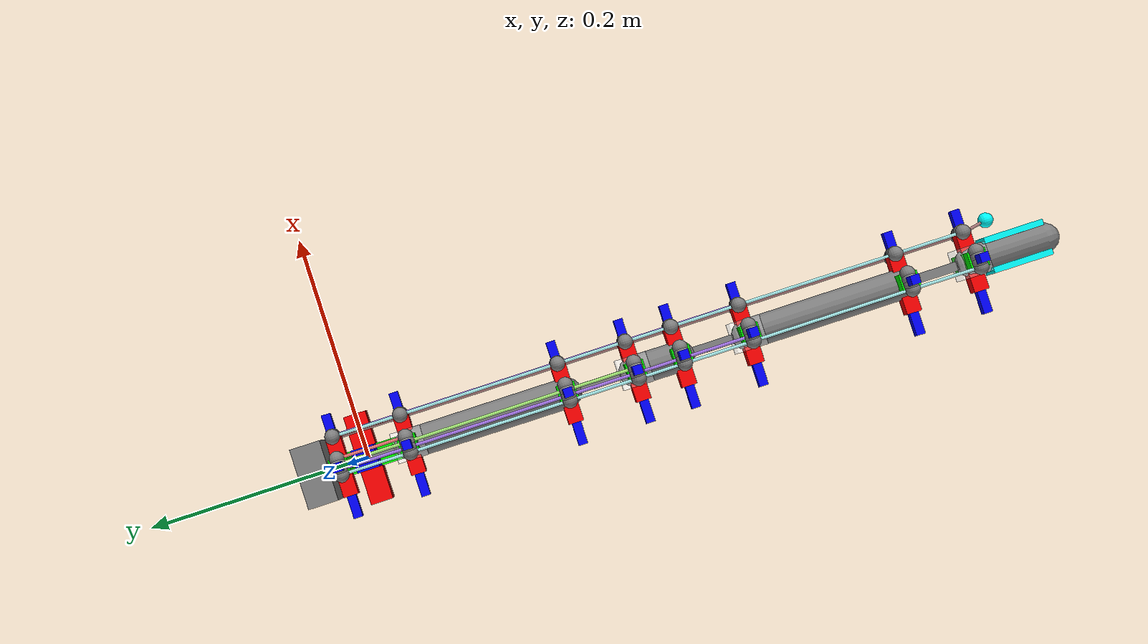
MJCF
<mujoco>

<!-- Default parameters -->
<default>
    <geom density="100"/>
</default>

<!-- gravity =0 -->
<option gravity="0 0 0"/>

<!-- Compiler and asset settings -->
<compiler angle="radian" meshdir="." autolimits="true"/>
<asset>
    <!-- STL models can be added here -->
</asset>

<worldbody>
    <!-- Lighting and environment -->
    <light directional="true" pos="-0.5 0.5 3" dir="0 0 -1" />
    <geom name="floor" pos="0 0 0" size="1 1 1" type="plane" rgba="1 0.83 0.61 0.5"/>
    <geom name="x-axis" type="box" size=".04 .01 .01" rgba="1 0 0 1" contype="0" conaffinity="0"/>
    <geom name="y-axis" type="box" size=".01 .04 .01" rgba="0 1 0 1" contype="0" conaffinity="0"/>
    <geom name="z-axis" type="box" size=".01 .01 .04" rgba="0 0 1 1" contype="0" conaffinity="0"/>

    <!-- Add a  90 degree rotation around x and place the arm 40 cm over the table-->
    <body name="base_x" pos="0 0 .4" euler="1.5708 0 0">
        <geom name="base_x" type="box" size=".02 .02 .01" rgba=".5 .5 .5 1" contype="0" conaffinity="0"/>
    <!-- BASE with base rotation joint around Z axis-->
    <body name="base_rot" pos="0 0 0">
        <joint name="base_z_joint" type="hinge" axis="0 0 1" pos="0 0 0" damping="0.01" range="-3.14 3.14"/>

        <!-- Static base platform -->
        <body name="base" pos="0 0 0">
            <geom name="base" type="box" size=".02 .02 .01" rgba=".5 .5 .5 1" contype="0" conaffinity="0"/>

            <!-- SHOULDER JOINT -->
            <body name="shoulderbase" pos="0 0 .04">
                <geom name="baseframex" type="box" size=".003" fromto="-.035 0 -.023 .035 0 -.023" rgba="0 0 1 1" contype="0" conaffinity="0"/>
                <geom name="baseframey" type="box" size=".003" fromto="0 -.035 -.023 0 .035 -.023" rgba="0 0 1 1" contype="0" conaffinity="0"/>
                <!-- Seilanker (8 Startpunkte + 1* gripper) -->
                <site name="sh_tendon_gripper"   pos="0.0186 -0.0087 -0.023" size="0.005"/>
                <site name="sh_tendon_x_start_1"   pos="0.0198 -0.0053 -0.023" size="0.005"/>
                <site name="sh_tendon_x_start_2"   pos="0.0204 -0.0018 -0.023" size="0.005"/>
                <site name="sh_tendon_x_start_3"   pos="0.0204  0.0018 -0.023" size="0.005"/>
                <site name="sh_tendon_x_start_4"   pos="0.0198  0.0053 -0.023" size="0.005"/>
                <site name="sh_tendon_y_start_1"   pos="0.0053  0.0198 -0.023" size="0.005"/>
                <site name="sh_tendon_y_start_2"   pos="0.0018  0.0204 -0.023" size="0.005"/>
                <site name="sh_tendon_y_start_3"   pos="-0.0018 0.0204 -0.023" size="0.005"/>
                <site name="sh_tendon_y_start_4"   pos="-0.0053 0.0198 -0.023" size="0.005"/>

                <body name="shoulder_xjoint1" pos="0 0 0">
                    <geom name="shoulder_xjoint1" type="box" size=".005" fromto="-.02 0 -.023 .02 0 -.023" rgba="1 0 0 1" contype="0" conaffinity="0"/>
                    <joint name="shoulder_xjoint1" type="hinge" axis="1 0 0" pos="0 0 -.023" damping="0.02" range="-0.7854 0.7854"/>

                    <body name="shoulder_yjoint1" pos="0 0 0">
                        <geom name="shoulder_connector" type="box" size=".003" fromto="0 0 -.023 0 0 .023" rgba=".5 .5 .5 1" contype="0" conaffinity="0"/>
                        <geom name="shoulder_yjoint1" type="box" size=".006" fromto="0 0.02 -.023 0 -0.02 -.023" rgba="0 1 0 1" contype="0" conaffinity="0"/>
                        <joint name="shoulder_yjoint1" type="hinge" axis="0 1 0" pos="0 0 -.023" damping="0.02" range="-0.7854 0.7854"/>

                        <geom name="shoulder_yjoint2" type="box" size=".006" fromto="0 0.02 .023 0 -0.02 .023" rgba="0 1 0 1" contype="0" conaffinity="0"/>
                        <body name="shoulder_yjoint2" pos="0 0 0">
                            <joint name="shoulder_yjoint2" type="hinge" axis="0 1 0" pos="0 0 .023" damping="0.02" range="-0.7854 0.7854"/>

                            <geom name="shoulder_xjoint2" type="box" size=".005" fromto="-.02 0 .023 .02 0 .023" rgba="1 0 0 1" contype="0" conaffinity="0"/>
                            <body name="shoulder_end" pos="0 0 .023">
                                <geom name="shoulder_box" type="box" size=".01 .01 .01" rgba="1 1 1 .3" contype="0" conaffinity="0" mass="0"/>
                                <joint name="shoulder_xjoint2" type="hinge" axis="1 0 0" pos="0 0 0" damping="0.02" range="-0.7854 0.7854"/>
                                <geom name="endframex" type="box" size=".003" fromto="-.035 0 0 .035 0 0" rgba="0 0 1 1" contype="0" conaffinity="0"/>
                                <geom name="endframey" type="box" size=".003" fromto="0 -.035 0 0 .035 0" rgba="0 0 1 1" contype="0" conaffinity="0"/>
                                <!-- Seilanker (8 Endpunkte + 1* gripper) -->
                                <site name="sh_tendon_gripper_end"     pos="0.0186 -0.0087 0.0" size="0.005"/>
                                <site name="sh_tendon_x_end_1"         pos="0.0198 -0.0053 0.0" size="0.005"/>
                                <site name="sh_tendon_x_end_2"         pos="0.0204 -0.0018 0.0" size="0.005"/>
                                <site name="sh_tendon_x_end_3"         pos="0.0204  0.0018 0.0" size="0.005"/>
                                <site name="sh_tendon_x_end_4"         pos="0.0198  0.0053 0.0" size="0.005"/>
                                <site name="sh_tendon_y_end_1"         pos="0.0053  0.0198 0.0" size="0.005"/>
                                <site name="sh_tendon_y_end_2"         pos="0.0018  0.0204 0.0" size="0.005"/>
                                <site name="sh_tendon_y_end_3"         pos="-0.0018 0.0204 0.0" size="0.005"/>
                                <site name="sh_tendon_y_end_4"         pos="-0.0053 0.0198 0.0" size="0.005"/>

                                <!-- Connector between shoulder and elbow -->
                                <geom name="link_shoulder_elbow1" type="capsule" fromto="0 0 0 0 0 0.107" size="0.01" rgba="0.5 0.5 0.5 1" contype="0" conaffinity="0"/>

                                <!-- ELBOW JOINT 1 -->
                                <body name="elbow1base" pos="0 0 0.13">
                                    <geom name="elbow1framex" type="box" size=".003" fromto="-.035 0 -.023 .035 0 -.023" rgba="0 0 1 1" contype="0" conaffinity="0"/>
                                    <geom name="elbow1framey" type="box" size=".003" fromto="0 -.035 -.023 0 .035 -.023" rgba="0 0 1 1" contype="0" conaffinity="0"/>
                                    <!-- Seilanker el1 (8 Startpunkte + 1* gripper) -->
                                    <site name="el1_tendon_gripper"     pos="0.0186 -0.0087 -0.023" size="0.005"/>
                                    <site name="el1_tendon_x_start_1"   pos="0.0198 -0.0053 -0.023" size="0.005"/>
                                    <site name="el1_tendon_x_start_2"   pos="0.0204 -0.0018 -0.023" size="0.005"/>
                                    <site name="el1_tendon_x_start_3"   pos="0.0204  0.0018 -0.023" size="0.005"/>
                                    <site name="el1_tendon_x_start_4"   pos="0.0198  0.0053 -0.023" size="0.005"/>
                                    <site name="el1_tendon_y_start_1"   pos="0.0053  0.0198 -0.023" size="0.005"/>
                                    <site name="el1_tendon_y_start_2"   pos="0.0018  0.0204 -0.023" size="0.005"/>
                                    <site name="el1_tendon_y_start_3"   pos="-0.0018 0.0204 -0.023" size="0.005"/>
                                    <site name="el1_tendon_y_start_4"   pos="-0.0053 0.0198 -0.023" size="0.005"/>

                                    <body name="elbow1_xjoint1" pos="0 0 0">
                                        <geom name="elbow1_xjoint1" type="box" size=".005" fromto="-.02 0 -.023 .02 0 -.023" rgba="1 0 0 1" contype="0" conaffinity="0"/>
                                        <joint name="elbow1_xjoint1" type="hinge" axis="1 0 0" pos="0 0 -.023" damping="0.02" range="-0.7854 0.7854" />
                                        <body name="elbow1_yjoint1" pos="0 0 0">
                                            <geom name="elbow1_connector" type="box" size=".003" fromto="0 0 -.023 0 0 .023" rgba=".5 .5 .5 1" contype="0" conaffinity="0"/>
                                            <geom name="elbow1_yjoint1" type="box" size=".006" fromto="0 0.02 -.023 0 -0.02 -.023" rgba="0 1 0 1" contype="0" conaffinity="0"/>
                                            <joint name="elbow1_yjoint1" type="hinge" axis="0 1 0" pos="0 0 -.023" damping="0.02" range="-0.7854 0.7854"/>
                                            <geom name="elbow1_yjoint2" type="box" size=".006" fromto="0 0.02 .023 0 -0.02 .023" rgba="0 1 0 1" contype="0" conaffinity="0"/>
                                            <body name="elbow1_yjoint2" pos="0 0 0">
                                                <joint name="elbow1_yjoint2" type="hinge" axis="0 1 0" pos="0 0 .023" damping="0.02" range="-0.7854 0.7854"/>
                                                <geom name="elbow1_xjoint2" type="box" size=".005" fromto="-.02 0 .023 .02 0 .023" rgba="1 0 0 1" contype="0" conaffinity="0"/>
                                                <body name="elbow1_end" pos="0 0 .023">
                                                    <geom name="elbow1_box" type="box" size=".01 .01 .01" rgba="1 1 1 .3" contype="0" conaffinity="0" mass="0"/>
                                                    <joint name="elbow1_xjoint2" type="hinge" axis="1 0 0" pos="0 0 0" damping="0.02" range="-0.7854 0.7854"/>
                                                    <geom name="elbow1framex_end" type="box" size=".003" fromto="-.035 0 0 .035 0 0" rgba="0 0 1 1" contype="0" conaffinity="0"/>
                                                    <geom name="elbow1framey_end" type="box" size=".003" fromto="0 -.035 0 0 .035 0" rgba="0 0 1 1" contype="0" conaffinity="0"/>
                                                    <!-- Seilanker el1 (8 Endpunkte + 1* gripper) -->
                                                    <site name="el1_tendon_gripper_end"     pos="0.0186 -0.0087 0.0" size="0.005"/>
                                                    <site name="el1_tendon_x_end_1"         pos="0.0198 -0.0053 0.0" size="0.005"/>
                                                    <site name="el1_tendon_x_end_2"         pos="0.0204 -0.0018 0.0" size="0.005"/>
                                                    <site name="el1_tendon_x_end_3"         pos="0.0204  0.0018 0.0" size="0.005"/>
                                                    <site name="el1_tendon_x_end_4"         pos="0.0198  0.0053 0.0" size="0.005"/>
                                                    <site name="el1_tendon_y_end_1"         pos="0.0053  0.0198 0.0" size="0.005"/>
                                                    <site name="el1_tendon_y_end_2"         pos="0.0018  0.0204 0.0" size="0.005"/>
                                                    <site name="el1_tendon_y_end_3"         pos="-0.0018 0.0204 0.0" size="0.005"/>
                                                    <site name="el1_tendon_y_end_4"         pos="-0.0053 0.0198 0.0" size="0.005"/>

                                                    <!--Connector between elbow1 and elbow2-->
                                                    <geom name="link_elbow1_elbow2" type="capsule" fromto="0 0 0 0 0 0.031" size="0.01" rgba="0.5 0.5 0.5 1" contype="0" conaffinity="0"/>
                                                    <site  name="elbow_site" pos="0 0 0.0155" size="0.01" rgba="0 1 1 1"/>
                                                    <!-- ELBOW JOINT 2 -->
                                                    <body name="elbow2base" pos="0 0 0.054">
                                                        <geom name="elbow2framex" type="box" size=".003" fromto="-.035 0 -.023 .035 0 -.023" rgba="0 0 1 1" contype="0" conaffinity="0"/>
                                                        <geom name="elbow2framey" type="box" size=".003" fromto="0 -.035 -.023 0 .035 -.023" rgba="0 0 1 1" contype="0" conaffinity="0"/>
                                                        <!-- Seilanker el2 (8 Startpunkte + 1* gripper) -->
                                                        <site name="el2_tendon_gripper"     pos="0.0186 -0.0087 -0.023" size="0.005"/>
                                                        <site name="el2_tendon_x_start_1"   pos="0.0198 -0.0053 -0.023" size="0.005"/>
                                                        <site name="el2_tendon_x_start_2"   pos="0.0204 -0.0018 -0.023" size="0.005"/>
                                                        <site name="el2_tendon_x_start_3"   pos="0.0204  0.0018 -0.023" size="0.005"/>
                                                        <site name="el2_tendon_x_start_4"   pos="0.0198  0.0053 -0.023" size="0.005"/>
                                                        <site name="el2_tendon_y_start_1"   pos="0.0053  0.0198 -0.023" size="0.005"/>
                                                        <site name="el2_tendon_y_start_2"   pos="0.0018  0.0204 -0.023" size="0.005"/>
                                                        <site name="el2_tendon_y_start_3"   pos="-0.0018 0.0204 -0.023" size="0.005"/>
                                                        <site name="el2_tendon_y_start_4"   pos="-0.0053 0.0198 -0.023" size="0.005"/>

                                                        <body name="elbow2_xjoint1" pos="0 0 0">
                                                            <geom name="elbow2_xjoint1" type="box" size=".005" fromto="-.02 0 -.023 .02 0 -.023" rgba="1 0 0 1" contype="0" conaffinity="0"/>
                                                            <joint name="elbow2_xjoint1" type="hinge" axis="1 0 0" pos="0 0 -.023" damping="0.02" range="-0.7854 0.7854"/>
                                                            <body name="elbow2_yjoint1" pos="0 0 0">
                                                                <geom name="elbow2_connector" type="box" size=".003" fromto="0 0 -.023 0 0 .023" rgba=".5 .5 .5 1" contype="0" conaffinity="0"/>
                                                                <geom name="elbow2_yjoint1" type="box" size=".006" fromto="0 0.02 -.023 0 -0.02 -.023" rgba="0 1 0 1" contype="0" conaffinity="0"/>
                                                                <joint name="elbow2_yjoint1" type="hinge" axis="0 1 0" pos="0 0 -.023" damping="0.02" range="-0.7854 0.7854"/>
                                                                <geom name="elbow2_yjoint2" type="box" size=".006" fromto="0 0.02 .023 0 -0.02 .023" rgba="0 1 0 1" contype="0" conaffinity="0"/>
                                                                <body name="elbow2_yjoint2" pos="0 0 0">
                                                                    <joint name="elbow2_yjoint2" type="hinge" axis="0 1 0" pos="0 0 .023" damping="0.02" range="-0.7854 0.7854"/>
                                                                    <geom name="elbow2_xjoint2" type="box" size=".005" fromto="-.02 0 .023 .02 0 .023" rgba="1 0 0 1" contype="0" conaffinity="0"/>
                                                                    <body name="elbow2_end" pos="0 0 .023">
                                                                        <geom name="elbow2_box" type="box" size=".01 .01 .01" rgba="1 1 1 .3" contype="0" conaffinity="0" mass="0"/>
                                                                        <joint name="elbow2_xjoint2" type="hinge" axis="1 0 0" pos="0 0 0" damping="0.02" range="-0.7854 0.7854"/>
                                                                        <geom name="elbow2framex_end" type="box" size=".003" fromto="-.035 0 0 .035 0 0" rgba="0 0 1 1" contype="0" conaffinity="0"/>
                                                                        <geom name="elbow2framey_end" type="box" size=".003" fromto="0 -.035 0 0 .035 0" rgba="0 0 1 1" contype="0" conaffinity="0"/>
                                                                        <!-- Seilanker el2 (8 Endpunkte + 1* gripper) -->
                                                                        <site name="el2_tendon_gripper_end"     pos="0.0186 -0.0087 0.0" size="0.005"/>
                                                                        <site name="el2_tendon_x_end_1"         pos="0.0198 -0.0053 0.0" size="0.005"/>
                                                                        <site name="el2_tendon_x_end_2"         pos="0.0204 -0.0018 0.0" size="0.005"/>
                                                                        <site name="el2_tendon_x_end_3"         pos="0.0204  0.0018 0.0" size="0.005"/>
                                                                        <site name="el2_tendon_x_end_4"         pos="0.0198  0.0053 0.0" size="0.005"/>
                                                                        <site name="el2_tendon_y_end_1"         pos="0.0053  0.0198 0.0" size="0.005"/>
                                                                        <site name="el2_tendon_y_end_2"         pos="0.0018  0.0204 0.0" size="0.005"/>
                                                                        <site name="el2_tendon_y_end_3"         pos="-0.0018 0.0204 0.0" size="0.005"/>
                                                                        <site name="el2_tendon_y_end_4"         pos="-0.0053 0.0198 0.0" size="0.005"/>

                                                                        <!--Connector between elbow2 and wrist-->
                                                                        <geom name="link_elbow2_wrist" type="capsule" fromto="0 0 0 0 0 0.107" size="0.01" rgba="0.5 0.5 0.5 1" contype="0" conaffinity="0"/>

                                                                        <!-- WRIST JOINT -->

                                                                        <body name="wristbase" pos="0 0 0.13">
                                                                            <geom name="wristframex" type="box" size=".003" fromto="-.035 0 -.023 .035 0 -.023" rgba="0 0 1 1" contype="0" conaffinity="0"/>
                                                                            <geom name="wristframey" type="box" size=".003" fromto="0 -.035 -.023 0 .035 -.023" rgba="0 0 1 1" contype="0" conaffinity="0"/>
                                                                        <!-- Seilanker wr (8 Startpunkte + 1* gripper) -->
                                                                        <site name="wr_tendon_gripper"     pos="0.0186 -0.0087 -0.023" size="0.005"/>
                                                                        <site name="wr_tendon_x_start_1"   pos="0.0198 -0.0053 -0.023" size="0.005"/>
                                                                        <site name="wr_tendon_x_start_2"   pos="0.0204 -0.0018 -0.023" size="0.005"/>
                                                                        <site name="wr_tendon_x_start_3"   pos="0.0204  0.0018 -0.023" size="0.005"/>
                                                                        <site name="wr_tendon_x_start_4"   pos="0.0198  0.0053 -0.023" size="0.005"/>
                                                                        <site name="wr_tendon_y_start_1"   pos="0.0053  0.0198 -0.023" size="0.005"/>
                                                                        <site name="wr_tendon_y_start_2"   pos="0.0018  0.0204 -0.023" size="0.005"/>
                                                                        <site name="wr_tendon_y_start_3"   pos="-0.0018 0.0204 -0.023" size="0.005"/>
                                                                        <site name="wr_tendon_y_start_4"   pos="-0.0053 0.0198 -0.023" size="0.005"/>

                                                                            <body name="wrist_xjoint1" pos="0 0 0">
                                                                                <geom name="wrist_xjoint1" type="box" size=".005" fromto="-.02 0 -.023 .02 0 -.023" rgba="1 0 0 1" contype="0" conaffinity="0"/>
                                                                                <joint name="wrist_xjoint1" type="hinge" axis="1 0 0" pos="0 0 -.023" damping="0.02" range="-0.7854 0.7854"/>
                                                                                <body name="wrist_yjoint1" pos="0 0 0">
                                                                                    <geom name="wrist_connector" type="box" size=".003" fromto="0 0 -.023 0 0 .023" rgba=".5 .5 .5 1" contype="0" conaffinity="0"/>
                                                                                    <geom name="wrist_yjoint1" type="box" size=".006" fromto="0 0.02 -.023 0 -0.02 -.023" rgba="0 1 0 1" contype="0" conaffinity="0"/>
                                                                                    <joint name="wrist_yjoint1" type="hinge" axis="0 1 0" pos="0 0 -.023" damping="0.02" range="-0.7854 0.7854"/>
                                                                                    <geom name="wrist_yjoint2" type="box" size=".006" fromto="0 0.02 .023 0 -0.02 .023" rgba="0 1 0 1" contype="0" conaffinity="0"/>
                                                                                    <body name="wrist_yjoint2" pos="0 0 0">
                                                                                        <joint name="wrist_yjoint2" type="hinge" axis="0 1 0" pos="0 0 .023" damping="0.02" range="-0.7854 0.7854"/>
                                                                                        <geom name="wrist_xjoint2" type="box" size=".005" fromto="-.02 0 .023 .02 0 .023" rgba="1 0 0 1" contype="0" conaffinity="0"/>
                                                                                        <body name="wrist_end" pos="0 0 .023">
                                                                                            <geom name="wrist_box" type="box" size=".01 .01 .01" rgba="1 1 1 .3" contype="0" conaffinity="0" mass="0"/>
                                                                                            <joint name="wrist_xjoint2" type="hinge" axis="1 0 0" pos="0 0 0" damping="0.02" range="-0.7854 0.7854"/>
                                                                                            <geom name="wristframex_end" type="box" size=".003" fromto="-.035 0 0 .035 0 0" rgba="0 0 1 1" contype="0" conaffinity="0"/>
                                                                                            <geom name="wristframey_end" type="box" size=".003" fromto="0 -.035 0 0 .035 0" rgba="0 0 1 1" contype="0" conaffinity="0"/>
                                                                                            <!-- Seilanker wr (8 Endpunkte + 1* gripper) -->
                                                                                            <site name="wr_tendon_gripper_end"     pos="0.0186 -0.0087 0.0" size="0.005"/>
                                                                                            <site name="wr_tendon_x_end_1"         pos="0.0198 -0.0053 0.0" size="0.005"/>
                                                                                            <site name="wr_tendon_x_end_2"         pos="0.0204 -0.0018 0.0" size="0.005"/>
                                                                                            <site name="wr_tendon_x_end_3"         pos="0.0204  0.0018 0.0" size="0.005"/>
                                                                                            <site name="wr_tendon_x_end_4"         pos="0.0198  0.0053 0.0" size="0.005"/>
                                                                                            <site name="wr_tendon_y_end_1"         pos="0.0053  0.0198 0.0" size="0.005"/>
                                                                                            <site name="wr_tendon_y_end_2"         pos="0.0018  0.0204 0.0" size="0.005"/>
                                                                                            <site name="wr_tendon_y_end_3"         pos="-0.0018 0.0204 0.0" size="0.005"/>
                                                                                            <site name="wr_tendon_y_end_4"         pos="-0.0053 0.0198 0.0" size="0.005"/>

                                                                                            <!--Connector between wrist and hand-->
                                                                                            <geom name="link_wrist_hand" type="capsule" fromto="0 0 0 0 0 0.05" size="0.01" rgba="0.5 0.5 0.5 1" contype="0" conaffinity="0"/>
                                                                                            <geom name="gripperfix" type="box" size=".002 .01 .02" pos = "-.01 0 .03" rgba="0 1 1 1" contype="0" conaffinity="0" />
                                                                                            <!--gripper-->
                                                                                            <body name="gripper" pos="0 0 0.0">
                                                                                                <joint name="gripper" type="hinge" axis="0 1 0" pos="0 0 0.024" damping="0.02" range="-0.7854 0.7854"/>
                                                                                                <geom name="gripper" type="box" size=".002 .01 .02" pos = ".01 0 .03" rgba="0 1 1 1" contype="0" conaffinity="0"  />
                                                                                                <site name="gripper_site" pos="0.023 -0.018 0.023" size="0.005" rgba="0 1 1 1"/>
                                                                                            </body>

                                                                                        </body>
                                                                                    </body>
                                                                                </body>
                                                                            </body>
                                                                        </body>
                                                                    </body>
                                                                </body>
                                                            </body>
                                                        </body>
                                                    </body>
                                                </body>
                                            </body>
                                        </body>
                                    </body>
                                </body>
                            </body>
                        </body>
                    </body>
                </body>
            </body>
        </body>
    </body>
    </body>
</worldbody>

<equality>
    <joint joint1="shoulder_xjoint1" joint2="shoulder_xjoint2" polycoef="0 1 0 0 0" solref="0.002 .5" solimp="0.95 0.98 0.001"/>
    <joint joint1="shoulder_yjoint1" joint2="shoulder_yjoint2" polycoef="0 1 0 0 0" solref="0.002 .5" solimp="0.95 0.98 0.001"/>
    <joint joint1="elbow1_xjoint1" joint2="elbow1_xjoint2" polycoef="0 1 0 0 0" solref="0.002 .5" solimp="0.95 0.98 0.001"/>
    <joint joint1="elbow1_yjoint1" joint2="elbow1_yjoint2" polycoef="0 1 0 0 0" solref="0.002 .5" solimp="0.95 0.98 0.001"/>
    <joint joint1="elbow2_xjoint1" joint2="elbow2_xjoint2" polycoef="0 1 0 0 0" solref="0.002 .5" solimp="0.95 0.98 0.001"/>
    <joint joint1="elbow2_yjoint1" joint2="elbow2_yjoint2" polycoef="0 1 0 0 0" solref="0.002 .5" solimp="0.95 0.98 0.001"/>
    <joint joint1="wrist_xjoint1" joint2="wrist_xjoint2" polycoef="0 1 0 0 0" solref="0.002 .5" solimp="0.95 0.98 0.001"/>
    <joint joint1="wrist_yjoint1" joint2="wrist_yjoint2" polycoef="0 1 0 0 0" solref="0.002 .5" solimp="0.95 0.98 0.001"/>

    <!-- some coupling of elbow 1 and elbow 2-->
    <joint joint1="elbow1_xjoint2" joint2="elbow2_xjoint1" polycoef="0 1 0 0 0" solref="0.01 1" solimp="0.95 0.98 0.001"/>
    <joint joint1="elbow1_yjoint2" joint2="elbow2_yjoint1" polycoef="0 1 0 0 0" solref="0.01 1" solimp="0.95 0.98 0.001"/>

</equality>

<tendon>
    <spatial name="tendon_x_1" width="0.001" rgba="1 .5 .5 1" damping="1">
        <site site="sh_tendon_x_start_1"/>
        <site site="sh_tendon_x_end_1"/>
    </spatial>
    <spatial name="tendon_y_1" width="0.001" rgba="1 .5 .5 1" damping="1">
        <site site="sh_tendon_y_start_1"/>
        <site site="sh_tendon_y_end_1"/>
    </spatial>
    <spatial name="tendon_x_2" width="0.001" rgba=".7 1 .5 1" damping="1">
        <site site="sh_tendon_x_start_2"/>
        <site site="sh_tendon_x_end_2"/>
        <site site="el1_tendon_x_start_2"/>
        <site site="el1_tendon_x_end_2"/>
    </spatial>
    <spatial name="tendon_y_2" width="0.001" rgba=".7 1 .5 1" damping="1">
        <site site="sh_tendon_y_start_2"/>
        <site site="sh_tendon_y_end_2"/>
        <site site="el1_tendon_y_start_2"/>
        <site site="el1_tendon_y_end_2"/>
    </spatial>
    <spatial name="tendon_x_3" width="0.001" rgba=".7 .5 1 1" damping="1">
        <site site="sh_tendon_x_start_3"/>
        <site site="sh_tendon_x_end_3"/>
        <site site="el1_tendon_x_start_3"/>
        <site site="el1_tendon_x_end_3"/>
        <site site="el2_tendon_x_start_3"/>
        <site site="el2_tendon_x_end_3"/>
    </spatial>
    <spatial name="tendon_y_3" width="0.001" rgba=".7 .5 1 1" damping="1">
        <site site="sh_tendon_y_start_3"/>
        <site site="sh_tendon_y_end_3"/>
        <site site="el1_tendon_y_start_3"/>
        <site site="el1_tendon_y_end_3"/>
        <site site="el2_tendon_y_start_3"/>
        <site site="el2_tendon_y_end_3"/>
    </spatial>
    <spatial name="tendon_x_4" width="0.001" rgba=".7 1 1 1" damping="1">
        <site site="sh_tendon_x_start_4"/>
        <site site="sh_tendon_x_end_4"/>
        <site site="el1_tendon_x_start_4"/>
        <site site="el1_tendon_x_end_4"/>
        <site site="el2_tendon_x_start_4"/>
        <site site="el2_tendon_x_end_4"/>
        <site site="wr_tendon_x_start_4"/>
        <site site="wr_tendon_x_end_4"/>
    </spatial>
    <spatial name="tendon_y_4" width="0.001" rgba=".7 1 1 1" damping="1">
        <site site="sh_tendon_y_start_4"/>
        <site site="sh_tendon_y_end_4"/>
        <site site="el1_tendon_y_start_4"/>
        <site site="el1_tendon_y_end_4"/>
        <site site="el2_tendon_y_start_4"/>
        <site site="el2_tendon_y_end_4"/>
        <site site="wr_tendon_y_start_4"/>
        <site site="wr_tendon_y_end_4"/>
    </spatial>
    <spatial name="tendon_gripper" width="0.001" rgba=".7 .5 .5 1" damping="1">
        <site site="sh_tendon_gripper"/>
        <site site="sh_tendon_gripper_end"/>
        <site site="el1_tendon_gripper"/>
        <site site="el1_tendon_gripper_end"/>
        <site site="el2_tendon_gripper"/>
        <site site="el2_tendon_gripper_end"/>
        <site site="wr_tendon_gripper"/>
        <site site="wr_tendon_gripper_end"/>
        <site site="gripper_site"/>
    </spatial>

</tendon>

<actuator>
    <!--forward kinematics actuators-->
    <position name="motor_base_z" joint="base_z_joint" ctrlrange="-3.14 3.14" kp="2" />
    <position name="motor_x_1" tendon="tendon_x_1" ctrlrange="0.011 .081" kp="2000"/> Mitte: 0.046  +- 0.035 = 0.011 - 0.081
    <position name="motor_y_1" tendon="tendon_y_1" ctrlrange="0.011 .081" kp="2000"/>
    <position name="motor_x_2" tendon="tendon_x_2" ctrlrange="0.129 0.269" kp="1000"/> Mitte: 0.199 +- 0.035*2 = 0.129 - 0.269
    <position name="motor_y_2" tendon="tendon_y_2" ctrlrange="0.129 0.269" kp="1000"/>
    <position name="motor_x_3" tendon="tendon_x_3" ctrlrange="0.171 0.381" kp="500"/> Mitte: 0.276 +- 0.035*3 = 0.171 - 0.381
    <position name="motor_y_3" tendon="tendon_y_3" ctrlrange="0.171 0.381" kp="500"/>
    <position name="motor_x_4" tendon="tendon_x_4" ctrlrange="0.279 0.579" kp="250"/> Mitte: 0.429 +- 0.035*4 = 0.279 - 0.579
    <position name="motor_y_4" tendon="tendon_y_4" ctrlrange="0.279 0.579" kp="250"/>
    <position name="motor_gripper" tendon="tendon_gripper" ctrlrange="0.419 0.489" kp="125"/> Mitte: 0.454 +- 0.035 = 0.419 - 0.489

</actuator>

</mujoco>
